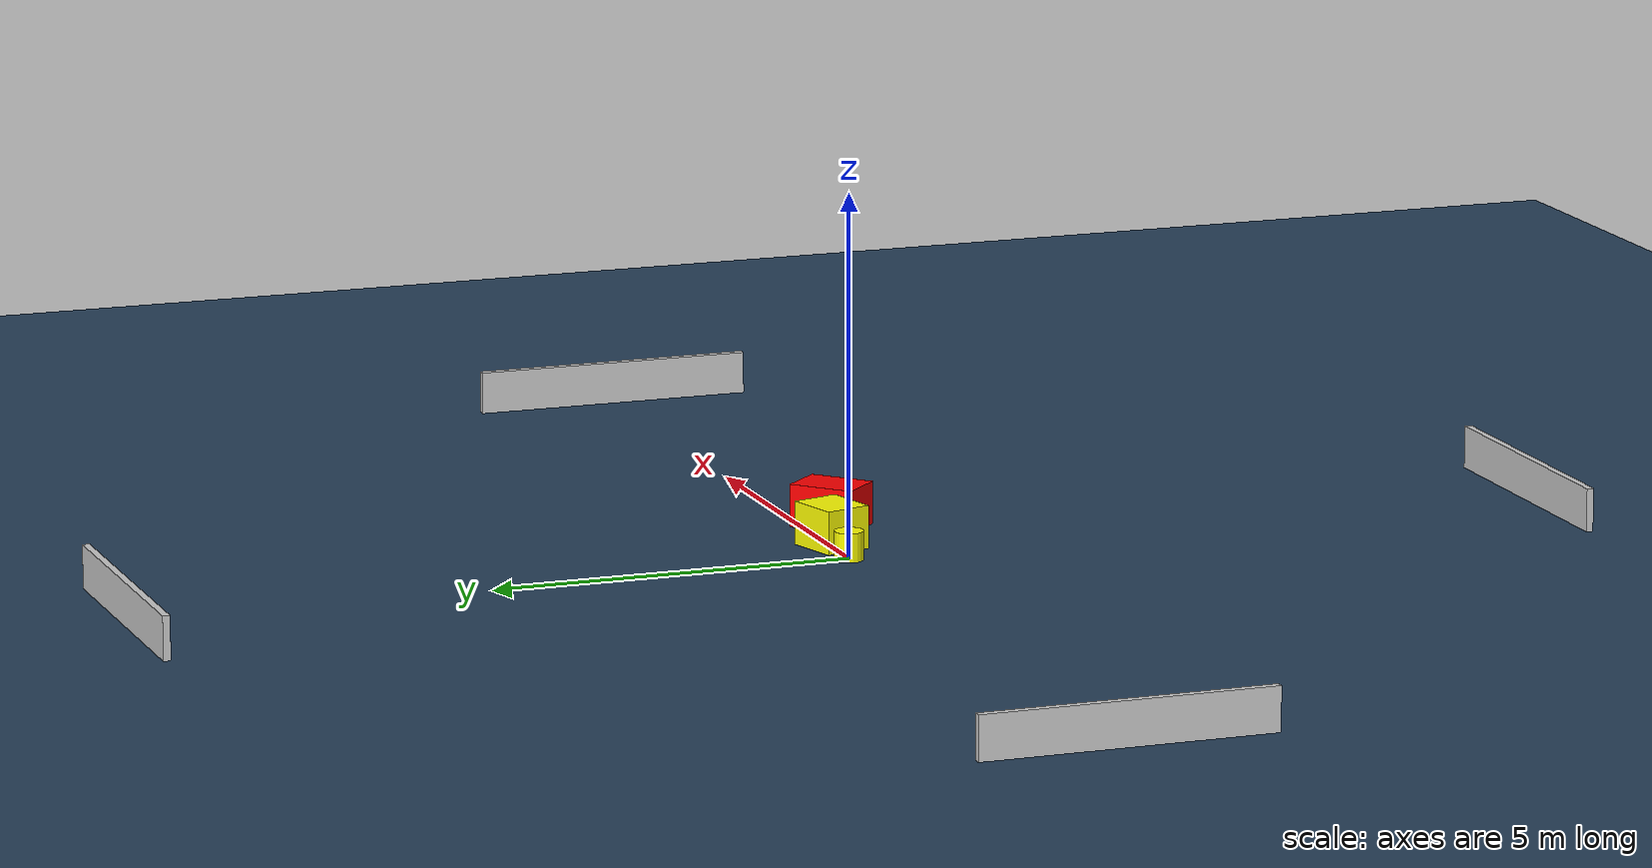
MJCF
<?xml version="1.0" ?>
<mujoco model="generated_environment">
  <option timestep="0.01" integrator="RK4" cone="elliptic"/>
  <default>
    <geom density="1"/>
  </default>
  <asset>
    <texture builtin="gradient" height="3072" name="skybox" rgb1="0.3 0.5 0.7" rgb2="0 0 0" type="skybox" width="512"/>
    <texture builtin="checker" height="300" name="groundplane" rgb1="0.2 0.3 0.4" rgb2="0.1 0.2 0.3" type="2d" width="300"/>
    <material name="groundplane" reflectance="0.2" texrepeat="5 5" texture="groundplane"/>
  </asset>
  <worldbody>
    <light dir="0 0 -1" directional="true" pos="0 0 1.5"/>
    <geom condim="3" friction="0.5 0.005 0.001" material="groundplane" name="floor" pos="0 0 0" size="0 0 0.05" type="plane"/>
    <body name="walls">
      <geom name="wall_1" condim="4" pos="-10.0 0.0 0.3" rgba="0.800000011920929 0.800000011920929 0.800000011920929 1.0" size="0.05 2.0 0.3" type="box"/>
      <geom name="wall_2" condim="4" pos="10.0 0.0 0.3" rgba="0.800000011920929 0.800000011920929 0.800000011920929 1.0" size="0.05 2.0 0.3" type="box"/>
      <geom name="wall_3" condim="4" pos="0.0 -10.0 0.3" rgba="0.800000011920929 0.800000011920929 0.800000011920929 1.0" size="2.0 0.05 0.3" type="box"/>
      <geom name="wall_4" condim="4" pos="0.0 10.0 0.3" rgba="0.800000011920929 0.800000011920929 0.800000011920929 1.0" size="2.0 0.05 0.3" type="box"/>
    </body>
    <body name="robot">
      <joint name="joint_x" type="slide" pos="0 0 0" axis="1 0 0"/>
      <joint name="joint_y" type="slide" pos="0 0 0" axis="0 1 0"/>
      <geom name="robot" type="cylinder" pos="0.0 0.0 0.2" size="0.2 0.2 0.0" mass="5.0" friction="1.0 0.005 0.0001" condim="4" rgba="1.0 1.0 0.0 1.0"/>
    </body>
    <body name="obstacle_1_movable">
      <geom name="obstacle_1_movable" condim="4" pos="0.7575759381411579 -0.02909428845056792 0.3" euler="0 0 105.92066940669545" friction="0.0 0.005 0.001" rgba="1.0 1.0 0.0 1.0" size="0.3293159109443993 0.38765624937978854 0.3" type="box" mass="0.1"/>
      <joint type="free"/>
    </body>
    <body name="obstacle_2_static">
      <geom name="obstacle_2_static" condim="4" pos="1.8668685983193598 -0.4317728125177449 0.3" euler="0 0 43.18290893674883" friction="0.0 0.005 0.001" rgba="1.0 0.0 0.0 1.0" size="0.463211127362235 0.3295215646630556 0.3" type="box"/>
    </body>
  </worldbody>
  <actuator>
    <motor name="actuator_x" joint="joint_x" gear="1" ctrlrange="-1 1"/>
    <motor name="actuator_y" joint="joint_y" gear="1" ctrlrange="-1 1"/>
  </actuator>
</mujoco>
